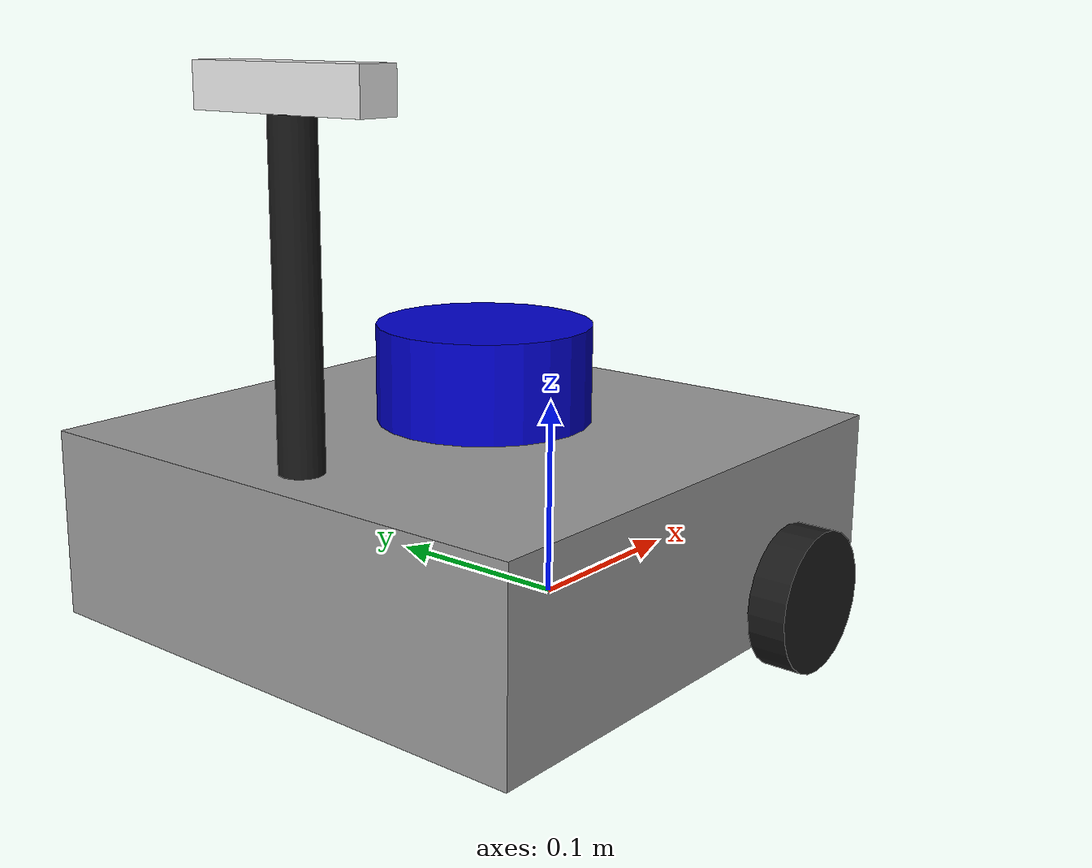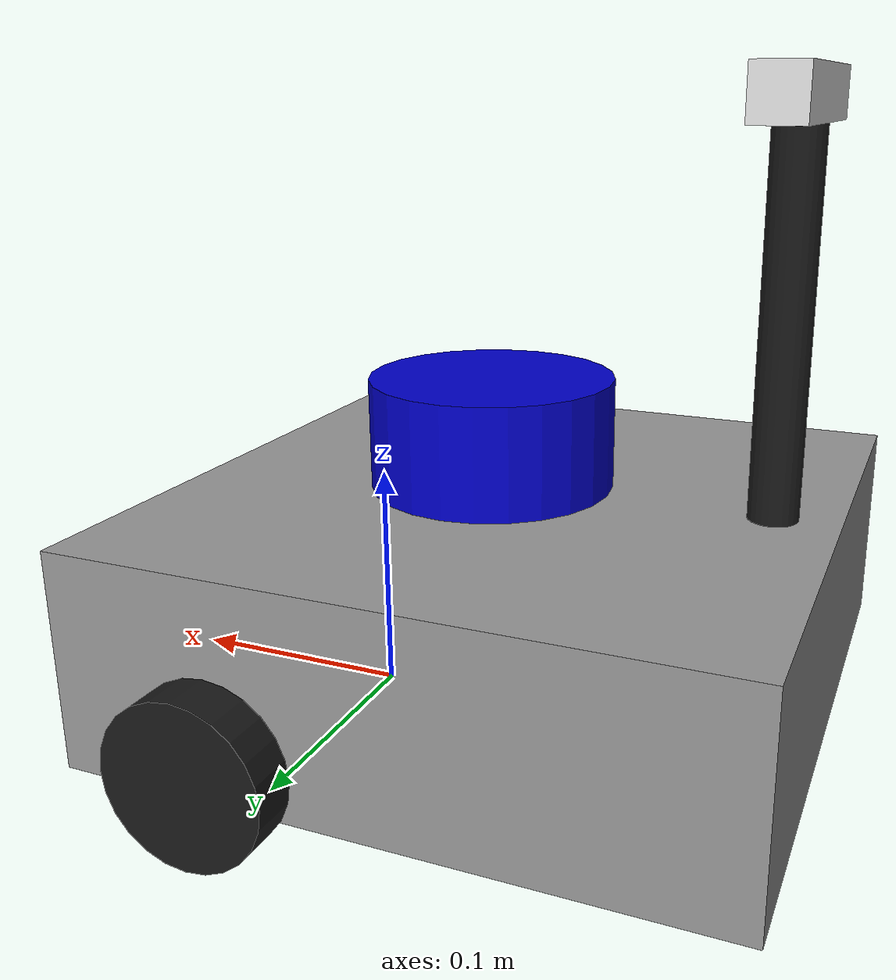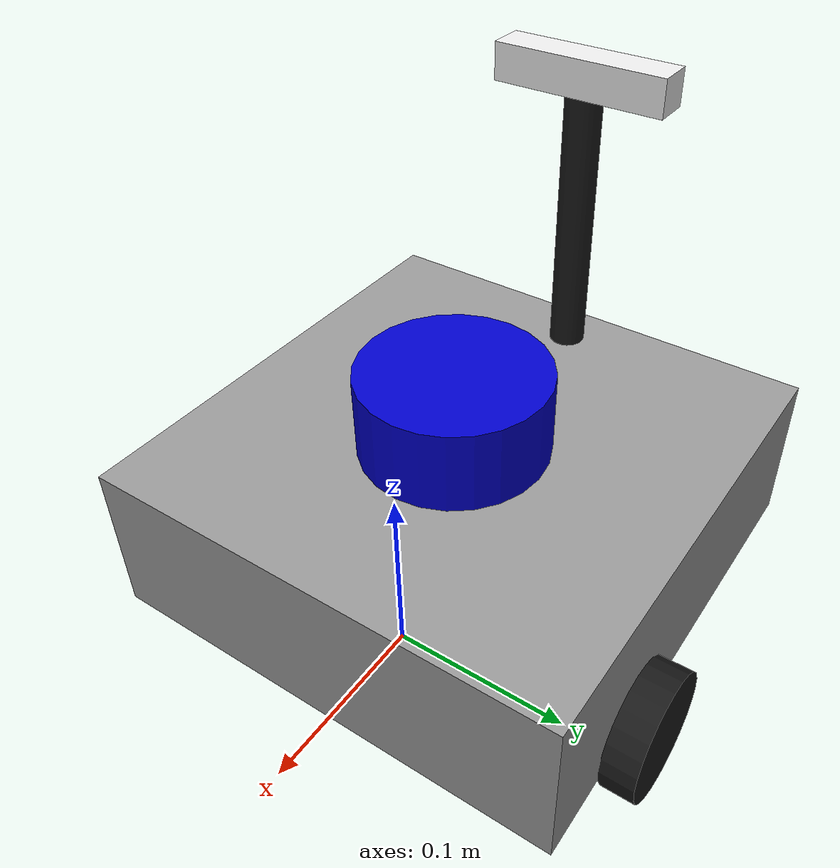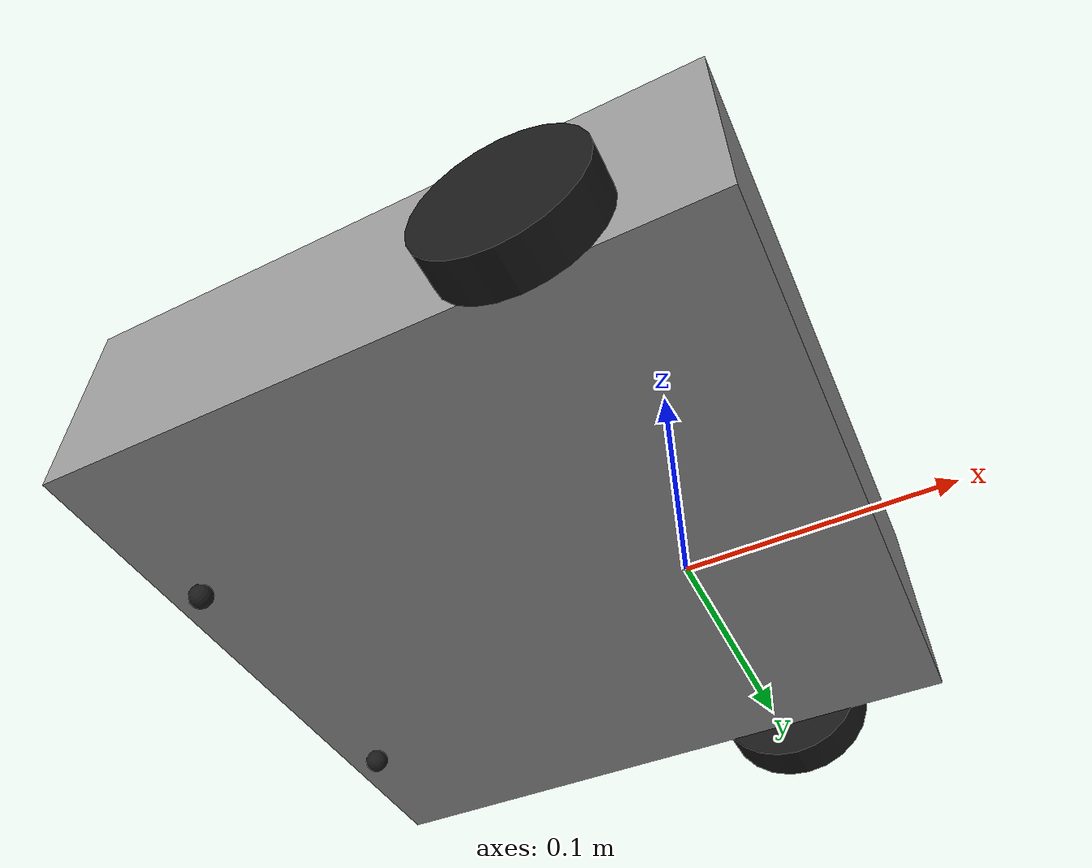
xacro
<?xml version="1.0" ?>
<robot name="tbot" xmlns:xacro="http://ros.org/wiki/xacro">

  <xacro:include filename="inertial_macros.xacro"/>
  <xacro:include filename="tbot.gazebo.xacro"/>

  <link name="base_footprint"/>

  <joint name="base_joint" type="fixed">
    <parent link="base_footprint"/>
    <child link="base_link"/>
    <origin xyz="0 0 0.010" rpy="0 0 0"/>
  </joint>

  <link name="base_link">
    <visual>
      <origin xyz="-0.064 0 0.048" rpy="0 0 0"/>
      <geometry>
        <box size="0.265 0.265 0.089"/>
      </geometry>
      <material name="light_grey">
        <color rgba="0.6 0.6 0.6 1.0"/>
      </material>
    </visual>

    <collision>
      <origin xyz="-0.064 0 0.048" rpy="0 0 0"/>
      <geometry>
        <box size="0.265 0.265 0.089"/>
      </geometry>
    </collision>

    <xacro:inertial_box mass="1.3729096" x="0.265" y="0.265" z="0.089">
      <origin xyz="-0.064 0 0.048" rpy="0 0 0"/>
    </xacro:inertial_box>
  </link>

  <joint name="imu_joint" type="fixed">
    <parent link="base_link"/>
    <child link="imu_link"/>
    <origin xyz="-0.032 0 0.068" rpy="0 0 0"/>
  </joint>

  <link name="imu_link"/>

  <joint name="lidar_joint" type="fixed">
    <parent link="base_link"/>
    <child link="base_scan"/>
    <origin xyz="-0.064 0 0.121" rpy="0 0 0"/>
  </joint>

  <link name="base_scan">
    <visual>
      <origin xyz="0.012 0 -0.010" rpy="0 0 0"/>
      <geometry>
        <cylinder length="0.055" radius="0.0508"/>
      </geometry>
      <material name="blue">
        <color rgba="0.0 0.0 0.8 1.0"/>
      </material>
    </visual>

    <collision>
      <origin xyz="0.012 0 -0.010" rpy="0 0 0"/>
      <geometry>
        <cylinder length="0.055" radius="0.0508"/>
      </geometry>
    </collision>

    <xacro:inertial_cylinder mass="0.114" length="0.055" radius="0.0508">
      <origin xyz="0.012 0 -0.010" rpy="0 0 0"/>
    </xacro:inertial_cylinder>
  </link>

  <xacro:macro name="tbot_wheel" params="prefix y_offset">
    <joint name="wheel_${prefix}_joint" type="continuous">
      <parent link="base_link"/>
      <child link="wheel_${prefix}_link"/>
      <origin xyz="0.0 ${y_offset} 0.023" rpy="-1.57 0 0"/>
      <axis xyz="0 0 1"/>
    </joint>

    <link name="wheel_${prefix}_link">
      <visual>
        <origin xyz="0 0 0" rpy="0 0 0"/>
        <geometry>
          <cylinder length="0.018" radius="0.033"/>
        </geometry>
        <material name="black">
          <color rgba="0.1 0.1 0.1 1.0"/>
        </material>
      </visual>

      <collision>
        <origin xyz="0 0 0" rpy="0 0 0"/>
        <geometry>
          <cylinder length="0.018" radius="0.033"/>
        </geometry>
      </collision>

      <xacro:inertial_cylinder mass="0.1" length="0.018" radius="0.033">
        <origin xyz="0 0 0" rpy="0 0 0"/>
      </xacro:inertial_cylinder>
    </link>

    <xacro:gazebo_wheel_params prefix="${prefix}"/>
  </xacro:macro>

  <xacro:tbot_wheel prefix="left" y_offset="0.144"/>
  <xacro:tbot_wheel prefix="right" y_offset="-0.144"/>

  <xacro:macro name="caster" params="prefix y_offset">
    <joint name="caster_${prefix}_joint" type="fixed">
      <parent link="base_link"/>
      <child link="caster_${prefix}_link"/>
      <origin xyz="-0.177 ${y_offset} -0.004" rpy="-1.57 0 0"/>
    </joint>

    <link name="caster_${prefix}_link">
      <visual>
        <geometry>
          <sphere radius="0.005"/>
        </geometry>
        <material name="black"/>
      </visual>
      <collision>
        <geometry>
          <sphere radius="0.005"/>
        </geometry>
      </collision>
      <xacro:inertial_sphere mass="0.001" radius="0.005">
        <origin xyz="0 0 0" rpy="0 0 0"/>
      </xacro:inertial_sphere>
    </link>

    <xacro:gazebo_caster_params prefix="${prefix}"/>
  </xacro:macro>

  <xacro:caster prefix="back_left" y_offset="0.064"/>
  <xacro:caster prefix="back_right" y_offset="-0.064"/>

  <joint name="camera_joint" type="fixed">
    <parent link="base_link"/>
    <child link="camera_link"/>
    <origin xyz="-0.17 0 0.25" rpy="0 0 0"/>
  </joint>
  <link name="camera_link">
      <visual>
          <geometry>
            <box size="0.02 0.095 0.02"/>
          </geometry>
          <material name="white"/>
      </visual>
      <visual>
        <origin xyz="0 0 -0.1"/>
        <geometry>
            <cylinder radius="0.01" length="0.2"/>
        </geometry>
        <material name="black"/>
      </visual>
  </link>

  <joint name="camera_depth_rgb_joint" type="fixed">
    <parent link="camera_link"/>
    <child link="camera_depth_rgb_link"/>
    <origin xyz="0 0 0" rpy="0 0 0"/>
  </joint>

  <link name="camera_depth_rgb_link">
  </link>

  <joint name="camera_optical_joint" type="fixed">
    <parent link="camera_depth_rgb_link"/>
    <child link="camera_depth_optical_link"/>
    <origin xyz="0 0 0" rpy="-1.5708 0 -1.5708"/>
  </joint>

  <link name="camera_depth_optical_link"/>

</robot>
